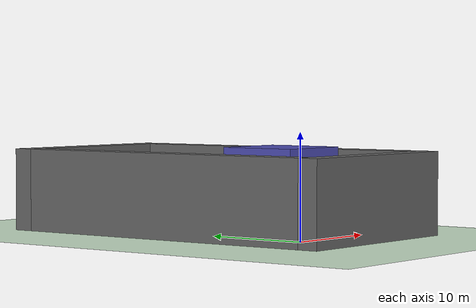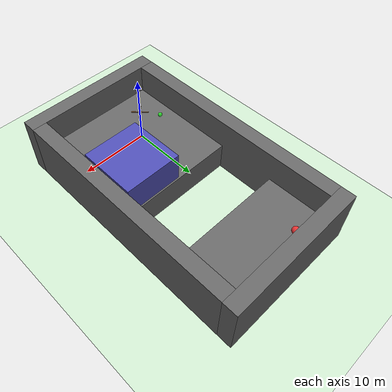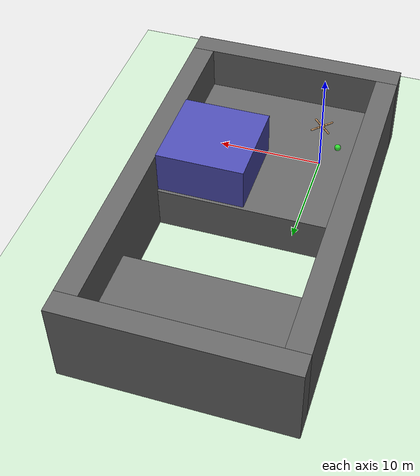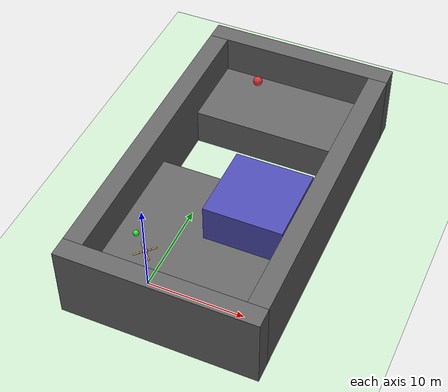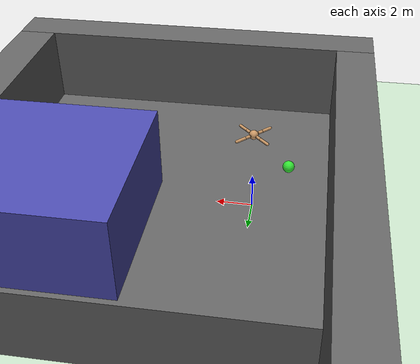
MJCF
<mujoco model="ant">
  <compiler angle="degree" coordinate="local" inertiafromgeom="true"/>
  <option integrator="RK4" timestep="0.01"/>
  <custom>
    <numeric data="0.0 0.0 0.55 1.0 0.0 0.0 0.0 0.0 1.0 0.0 -1.0 0.0 -1.0 0.0 1.0" name="init_qpos"/>
  </custom>
  <default>
    <joint armature="1" damping="1" limited="true"/>
    <geom conaffinity="0" condim="3" density="5.0" friction="1 0.5 0.5" margin="0.01" rgba="0.8 0.6 0.4 1"/>
  </default>
  <asset>
    <texture builtin="gradient" height="100" rgb1="1 1 1" rgb2="0 0 0" type="skybox" width="100"/>
    <texture builtin="flat" height="1278" mark="cross" markrgb="1 1 1" name="texgeom" random="0.01" rgb1="0.8 0.6 0.4" rgb2="0.8 0.6 0.4" type="cube" width="127"/>
    <texture builtin="checker" height="100" name="texplane" rgb1="0 0 0" rgb2="0.8 0.8 0.8" type="2d" width="100"/>
    <material name="MatPlane" reflectance="0.5" shininess="1" specular="1" texrepeat="60 60" texture="texplane"/>
    <material name="geom" texture="texgeom" texuniform="true"/>
  </asset>
  <worldbody>
    <light cutoff="100" diffuse="1 1 1" dir="-0 0 -1.3" directional="true" exponent="1" pos="0 0 1.3" specular=".1 .1 .1"/>
    <geom conaffinity="1" condim="3" material="MatPlane" name="floor" pos="0 0 0" rgba="0.8 0.9 0.8 1" size="40 40 40" type="plane"/>

    <geom pos="4 4 2" size="8 8 2" contype="1" conaffinity="1" name="path_1" type="box" material="" rgba="0.4 0.4 0.4 1"/>
    <geom pos="4 24 2" size="8 4 2" contype="1" conaffinity="1" name="path_2" type="box" material="" rgba="0.4 0.4 0.4 1"/>
    <geom pos="-5 12 4" size="1 16 4" contype="1" conaffinity="1" name="wall_1" type="box" material="" rgba="0.4 0.4 0.4 1"/>
    <geom pos="13 12 4" size="1 16 4" contype="1" conaffinity="1" name="wall_2" type="box" material="" rgba="0.4 0.4 0.4 1"/>
    <geom pos="4 -5 4" size="10 1 4" contype="1" conaffinity="1" name="wall_3" type="box" material="" rgba="0.4 0.4 0.4 1"/>
    <geom pos="4 29 4" size="10 1 4" contype="1" conaffinity="1" name="wall_4" type="box" material="" rgba="0.4 0.4 0.4 1"/>

    <body name="torso" pos="0 0 4.75">
      <camera name="track" mode="trackcom" pos="0 -3 0.3" xyaxes="1 0 0 0 0 1"/>
      <geom name="torso_geom" pos="0 0 0" size="0.25" type="sphere"/>
      <joint armature="0" damping="0" limited="false" margin="0.01" name="root" pos="0 0 0" type="free"/>
      <body name="front_left_leg" pos="0 0 0">
        <geom fromto="0.0 0.0 0.0 0.2 0.2 0.0" name="aux_1_geom" size="0.08" type="capsule"/>
        <body name="aux_1" pos="0.2 0.2 0">
          <joint axis="0 0 1" name="hip_1" pos="0.0 0.0 0.0" range="-30 30" type="hinge"/>
          <geom fromto="0.0 0.0 0.0 0.2 0.2 0.0" name="left_leg_geom" size="0.08" type="capsule"/>
          <body pos="0.2 0.2 0">
            <joint axis="-1 1 0" name="ankle_1" pos="0.0 0.0 0.0" range="30 70" type="hinge"/>
            <geom fromto="0.0 0.0 0.0 0.4 0.4 0.0" name="left_ankle_geom" size="0.08" type="capsule"/>
          </body>
        </body>
      </body>
      <body name="front_right_leg" pos="0 0 0">
        <geom fromto="0.0 0.0 0.0 -0.2 0.2 0.0" name="aux_2_geom" size="0.08" type="capsule"/>
        <body name="aux_2" pos="-0.2 0.2 0">
          <joint axis="0 0 1" name="hip_2" pos="0.0 0.0 0.0" range="-30 30" type="hinge"/>
          <geom fromto="0.0 0.0 0.0 -0.2 0.2 0.0" name="right_leg_geom" size="0.08" type="capsule"/>
          <body pos="-0.2 0.2 0">
            <joint axis="1 1 0" name="ankle_2" pos="0.0 0.0 0.0" range="-70 -30" type="hinge"/>
            <geom fromto="0.0 0.0 0.0 -0.4 0.4 0.0" name="right_ankle_geom" size="0.08" type="capsule"/>
          </body>
        </body>
      </body>
      <body name="back_leg" pos="0 0 0">
        <geom fromto="0.0 0.0 0.0 -0.2 -0.2 0.0" name="aux_3_geom" size="0.08" type="capsule"/>
        <body name="aux_3" pos="-0.2 -0.2 0">
          <joint axis="0 0 1" name="hip_3" pos="0.0 0.0 0.0" range="-30 30" type="hinge"/>
          <geom fromto="0.0 0.0 0.0 -0.2 -0.2 0.0" name="back_leg_geom" size="0.08" type="capsule"/>
          <body pos="-0.2 -0.2 0">
            <joint axis="-1 1 0" name="ankle_3" pos="0.0 0.0 0.0" range="-70 -30" type="hinge"/>
            <geom fromto="0.0 0.0 0.0 -0.4 -0.4 0.0" name="third_ankle_geom" size="0.08" type="capsule"/>
          </body>
        </body>
      </body>
      <body name="right_back_leg" pos="0 0 0">
        <geom fromto="0.0 0.0 0.0 0.2 -0.2 0.0" name="aux_4_geom" size="0.08" type="capsule"/>
        <body name="aux_4" pos="0.2 -0.2 0">
          <joint axis="0 0 1" name="hip_4" pos="0.0 0.0 0.0" range="-30 30" type="hinge"/>
          <geom fromto="0.0 0.0 0.0 0.2 -0.2 0.0" name="rightback_leg_geom" size="0.08" type="capsule"/>
          <body pos="0.2 -0.2 0">
            <joint axis="1 1 0" name="ankle_4" pos="0.0 0.0 0.0" range="30 70" type="hinge"/>
            <geom fromto="0.0 0.0 0.0 0.4 -0.4 0.0" name="fourth_ankle_geom" size="0.08" type="capsule"/>
          </body>
        </body>
      </body>
    </body>

    <body name="target" pos="0 27 4.3">
      <geom conaffinity="0" contype="0" name="target" pos="0 0 0" rgba="0.9 0.2 0.2 1" size=".5" type="sphere"/>
    </body>

    <body name="highlevel" pos="-2 2 4.3">
      <geom conaffinity="0" contype="0" name="highlevel" pos="0 0 0" rgba="0.2 0.9 0.2 1" size=".3" type="sphere"/>
    </body>

    <body name="block" pos="8 8 6.25">
      <geom pos="0 0 0" mass="0.5" size="3.95 3.95 2" contype="1" conaffinity="1" name="block" type="box" material="" rgba="0.3 0.3 0.7 1"/>
      <joint name='blocky' type='slide' axis='0 1 0' pos='0 0 0' limited="true" range="0 8.0" armature="0" damping="0"/>
      <joint name='blockz' type='slide' axis='0 0 1' pos='0 0 0' limited="false" armature="0" damping="0"/>
    </body>

  </worldbody>
  <actuator>
    <motor ctrllimited="true" ctrlrange="-1.0 1.0" joint="hip_4" gear="125"/>
    <motor ctrllimited="true" ctrlrange="-1.0 1.0" joint="ankle_4" gear="125"/>
    <motor ctrllimited="true" ctrlrange="-1.0 1.0" joint="hip_1" gear="125"/>
    <motor ctrllimited="true" ctrlrange="-1.0 1.0" joint="ankle_1" gear="125"/>
    <motor ctrllimited="true" ctrlrange="-1.0 1.0" joint="hip_2" gear="125"/>
    <motor ctrllimited="true" ctrlrange="-1.0 1.0" joint="ankle_2" gear="125"/>
    <motor ctrllimited="true" ctrlrange="-1.0 1.0" joint="hip_3" gear="125"/>
    <motor ctrllimited="true" ctrlrange="-1.0 1.0" joint="ankle_3" gear="125"/>
  </actuator>
</mujoco>
